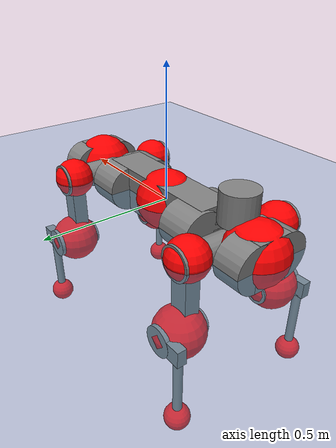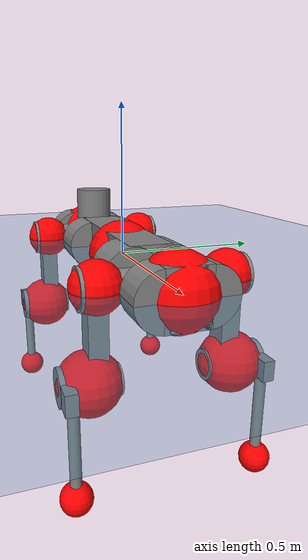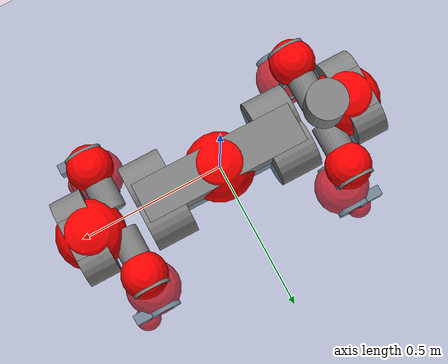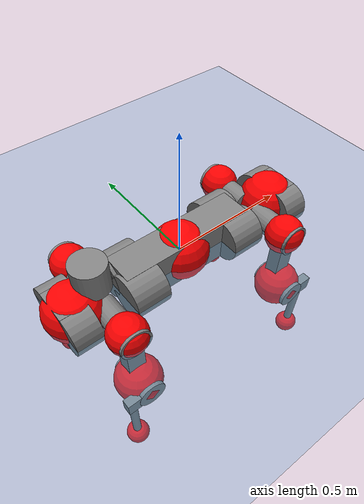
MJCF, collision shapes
<mujoco model="anymal_c">
  <compiler angle="radian" assetdir="assets" balanceinertia="true" inertiafromgeom="false"/>

  <option timestep="0.005" density="1.2" viscosity="2e-05"/>

  <size nkey="1"/>

  <visual>
    <quality shadowsize="8192"/>
    <map shadowclip="0.5"/>
  </visual>

  <default>
    <default class="/">
      <material specular="0" shininess="0.25"/>
      <geom contype="0" conaffinity="0" group="1" solref="-1000 -80"/>
      <site size="0.01 0.005 0.005" group="5"/>
      <general forcelimited="true" forcerange="-80 80" biastype="affine" gainprm="80" biasprm="0 -80 -2"/>
      <default class="anymal_c">
        <joint armature="0.01" damping="0.01" frictionloss="0.1"/>
        <default class="visual">
          <geom type="mesh" group="2"/>
          <default class="visual_zflip"/>
        </default>
        <default class="collision">
          <geom type="cylinder" group="3"/>
          <default class="foot">
            <geom size="0.03 0 0" type="sphere" condim="6" priority="1" friction="0.8 0.02 0.01" solimp="0.015 1 0.03"/>
          </default>
        </default>
      </default>
      <default class="reward_collision_sphere">
        <geom group="5" rgba="1 0 0 1"/>
      </default>
    </default>
  </default>

  <asset>
    <texture type="skybox" colorspace="auto" name="//unnamed_texture_0" builtin="gradient" rgb1="0.95 0.95 0.95" rgb2="0.95 0.95 0.95" width="100" height="600"/>
    <texture type="2d" colorspace="auto" name="texplane" builtin="checker" rgb1="0.345 0.575 0.748" rgb2="0.345 0.575 0.748" markrgb="1 1 1" width="512" height="512"/>
    <texture type="2d" colorspace="linear" name="base" file="base.png"/>
    <texture type="2d" colorspace="linear" name="top_shell" file="top_shell.png"/>
    <texture type="2d" colorspace="linear" name="bottom_shell" file="bottom_shell.png"/>
    <texture type="2d" colorspace="linear" name="remote" file="remote.png"/>
    <texture type="2d" colorspace="linear" name="hatch" file="hatch.png"/>
    <texture type="2d" colorspace="linear" name="handle" file="handle.png"/>
    <texture type="2d" colorspace="linear" name="face" file="face.png"/>
    <texture type="2d" colorspace="linear" name="battery" file="battery.png"/>
    <texture type="2d" colorspace="linear" name="lidar_cage" file="lidar_cage.png"/>
    <texture type="2d" colorspace="linear" name="depth_camera" file="depth_camera.png"/>
    <texture type="2d" colorspace="linear" name="wide_angle_camera" file="wide_angle_camera.png"/>
    <texture type="2d" colorspace="linear" name="lidar" file="lidar.png"/>
    <texture type="2d" colorspace="linear" name="drive" file="drive.png"/>
    <texture type="2d" colorspace="linear" name="hip_l" file="hip_l.png"/>
    <texture type="2d" colorspace="linear" name="shank_l" file="shank_l.png"/>
    <texture type="2d" colorspace="linear" name="foot" file="foot.png"/>
    <texture type="2d" colorspace="linear" name="thigh" file="thigh.png"/>
    <texture type="2d" colorspace="linear" name="shank_r" file="shank_r.png"/>
    <texture type="2d" colorspace="linear" name="hip_r" file="hip_r.png"/>
    <material name="MatPlane" class="/" texture="texplane" texuniform="true" texrepeat="2 2" specular="0.9" shininess="0.5"/>
    <material name="black_plastic" class="/" rgba="0.007 0.007 0.007 1"/>
    <material name="green" class="/" rgba="0.052 0.178 0.033 1"/>
    <material name="red" class="/" rgba="0.178 0.006 0.005 1"/>
    <material name="yellow" class="/" rgba="0.178 0.119 0.006 1"/>
    <material name="lwl" class="/" rgba="0.8 0.8 0.8 1"/>
    <material name="base" class="/" texture="base"/>
    <material name="top_shell" class="/" texture="top_shell"/>
    <material name="bottom_shell" class="/" texture="bottom_shell"/>
    <material name="hip_l" class="/" texture="hip_l"/>
    <material name="thigh" class="/" texture="thigh"/>
    <material name="shank_l" class="/" texture="shank_l"/>
    <material name="foot" class="/" texture="foot"/>
    <material name="hip_r" class="/" texture="hip_r"/>
    <material name="shank" class="/" texture="shank_r"/>
    <material name="hatch" class="/" texture="hatch"/>
    <material name="remote" class="/" texture="remote"/>
    <material name="handle" class="/" texture="handle"/>
    <material name="face" class="/" texture="face"/>
    <material name="depth_camera" class="/" texture="depth_camera"/>
    <material name="wide_angle_camera" class="/" texture="wide_angle_camera"/>
    <material name="battery" class="/" texture="battery"/>
    <material name="lidar_cage" class="/" texture="lidar_cage"/>
    <material name="lidar" class="/" texture="lidar"/>
    <material name="drive" class="/" texture="drive"/>
    <mesh name="base_0" class="/" file="base_0.obj"/>
    <mesh name="base_1" class="/" file="base_1.obj"/>
    <mesh name="base_2" class="/" file="base_2.obj"/>
    <mesh name="base_3" class="/" file="base_3.obj"/>
    <mesh name="base_4" class="/" file="base_4.obj"/>
    <mesh name="base_5" class="/" file="base_5.obj"/>
    <mesh name="top_shell" class="/" file="top_shell.obj"/>
    <mesh name="bottom_shell" class="/" file="bottom_shell.obj"/>
    <mesh name="remote" class="/" file="remote.obj"/>
    <mesh name="handle" class="/" file="handle.obj"/>
    <mesh name="face" class="/" file="face.obj"/>
    <mesh name="wide_angle_camera" class="/" file="wide_angle_camera.obj"/>
    <mesh name="depth_camera" class="/" file="depth_camera.obj"/>
    <mesh name="battery" class="/" file="battery.obj"/>
    <mesh name="lidar_cage" class="/" file="lidar_cage.obj"/>
    <mesh name="lidar" class="/" file="lidar.obj"/>
    <mesh name="drive" class="/" file="drive.obj"/>
    <mesh name="hip_l" class="/" file="hip_l.obj"/>
    <mesh name="thigh" class="/" file="thigh.obj"/>
    <mesh name="shank_l" class="/" file="shank_l.obj"/>
    <mesh name="foot" class="/" file="foot.obj"/>
    <mesh name="hip_r" class="/" file="hip_r.obj"/>
    <mesh name="hatch" class="/" file="hatch.obj"/>
    <mesh name="shank_r" class="/" file="shank_r.obj"/>
  </asset>

  <worldbody>
    <geom name="floor" class="/" size="100 100 0.125" type="plane" group="0" material="MatPlane"/>
    <light name="toplight_shadow" class="/" pos="0 0 5" dir="0.0990148 0.0990148 -0.990148" type="directional" ambient="0.04 0.04 0.04" diffuse="0.55 0.55 0.55" specular="0.12 0.12 0.12"/>
    <light name="toplight_fill" class="/" pos="0 0 5" dir="0.0990148 0.0990148 -0.990148" type="directional" castshadow="false" ambient="0.04 0.04 0.04" diffuse="0.3 0.3 0.3" specular="0.08 0.08 0.08"/>
    <body name="trunk" childclass="anymal_c" pos="0.00115682 -0.000930032 -0.000145002" quat="1 -1.56641e-06 1.314e-06 -3.86115e-05">
      <inertial pos="0.00252289 -0.000634108 0.0482346" quat="0.500005 0.499071 0.497359 0.503544" mass="17.1323" diaginertia="0.785376 0.347138 0.196336"/>
      <joint name="//unnamed_joint_0" type="free" armature="0" damping="0" frictionloss="0"/>
      <geom name="//unnamed_geom_1" class="visual" material="green" mesh="base_0"/>
      <geom name="//unnamed_geom_2" class="visual" material="yellow" mesh="base_1"/>
      <geom name="//unnamed_geom_3" class="visual" material="red" mesh="base_2"/>
      <geom name="//unnamed_geom_4" class="visual" material="black_plastic" mesh="base_3"/>
      <geom name="//unnamed_geom_5" class="visual" material="lwl" mesh="base_4"/>
      <geom name="//unnamed_geom_6" class="visual" material="base" mesh="base_5"/>
      <geom name="trunk_1" class="collision" size="0.281083 0.0678476 0.0872326" type="box"/>
      <geom name="trunk_2" class="collision" size="0.0872326 0.0702707" pos="0.225752 0.0622871 0" quat="0.707107 0 0.707107 0"/>
      <geom name="trunk_3" class="collision" size="0.0872326 0.0702707" pos="-0.225752 0.0622871 0" quat="0.707107 0 0.707107 0"/>
      <geom name="trunk_4" class="collision" size="0.0872326 0.0702707" pos="0.225752 -0.0622871 0" quat="0.707107 0 0.707107 0"/>
      <geom name="trunk_5" class="collision" size="0.0872326 0.0702707" pos="-0.225752 -0.0622871 0" quat="0.707107 0 0.707107 0"/>
      <geom name="//unnamed_geom_12" class="visual" material="top_shell" mesh="top_shell"/>
      <geom name="//unnamed_geom_13" class="visual" material="bottom_shell" mesh="bottom_shell"/>
      <geom name="//unnamed_geom_14" class="visual" material="remote" mesh="remote"/>
      <geom name="//unnamed_geom_15" class="visual" material="handle" mesh="handle"/>
      <geom name="//unnamed_geom_16" class="visual" pos="0.430225 0 0" quat="1 0 0 0" material="face" mesh="face"/>
      <geom name="trunk_6" class="collision" size="0.0533088 0.0678476 0.0872326" pos="0.487312 0 0" type="box"/>
      <geom name="//unnamed_geom_18" class="collision" size="0.0872326 0.0533088" pos="0.487312 0.0622871 0" quat="0.707107 0 0.707107 0"/>
      <geom name="//unnamed_geom_19" class="collision" size="0.0872326 0.0533088" pos="0.487312 -0.0622871 0" quat="0.707107 0 0.707107 0"/>
      <geom name="//unnamed_geom_20" class="visual" pos="0.479162 0 -0.0281757" quat="0.965926 0 0.258819 0" material="depth_camera" mesh="depth_camera"/>
      <geom name="//unnamed_geom_21" class="visual" pos="0.532462 0 0.0146706" material="wide_angle_camera" mesh="wide_angle_camera"/>
      <geom name="//unnamed_geom_22" class="visual_zflip" pos="-0.430225 0 0" quat="0 0 0 1" material="face" mesh="face"/>
      <geom name="trunk_7" class="collision" size="0.0533088 0.0678476 0.0872326" pos="-0.487312 0 0" quat="0 0 0 1" type="box"/>
      <geom name="//unnamed_geom_24" class="collision" size="0.0872326 0.0533088" pos="-0.487312 -0.0622871 0" quat="0 -0.707107 0 0.707107"/>
      <geom name="//unnamed_geom_25" class="collision" size="0.0872326 0.0533088" pos="-0.487312 0.0622871 0" quat="0 -0.707107 0 0.707107"/>
      <geom name="//unnamed_geom_26" class="visual" pos="-0.479162 0 -0.0281757" quat="0 -0.258819 0 0.965926" material="depth_camera" mesh="depth_camera"/>
      <geom name="//unnamed_geom_27" class="visual_zflip" pos="-0.532462 0 0.0146706" quat="0 0 0 1" material="wide_angle_camera" mesh="wide_angle_camera"/>
      <geom name="//unnamed_geom_28" class="visual" material="battery" mesh="battery"/>
      <geom name="//unnamed_geom_29" class="visual" pos="0 0.0660892 0.0289093" quat="0.683013 -0.183013 0.183013 0.683013" material="depth_camera" mesh="depth_camera"/>
      <geom name="//unnamed_geom_30" class="visual" pos="0 -0.0660892 0.0289093" quat="0.683013 0.183013 0.183013 -0.683013" material="depth_camera" mesh="depth_camera"/>
      <geom name="//unnamed_geom_31" class="visual" pos="-0.377809 0 0.07203" quat="1 0 0 0" material="lidar_cage" mesh="lidar_cage"/>
      <geom name="trunk_8" class="collision" size="0.0678476 0.0581551" pos="-0.377809 0 0.13083"/>
      <geom name="//unnamed_geom_33" class="visual" pos="-0.377809 -5.81936e-05 0.139356" quat="0.707107 0 0 -0.707107" material="lidar" mesh="lidar"/>
      <geom name="//unnamed_geom_34" class="visual" pos="0.311278 0.0925728 -1.55571e-09" quat="0.258819 0.965926 0 0" material="drive" mesh="drive"/>
      <geom name="//unnamed_geom_35" class="visual" pos="0.311278 -0.0925728 1.55571e-09" quat="0.258819 -0.965926 0 0" material="drive" mesh="drive"/>
      <geom name="//unnamed_geom_36" class="visual" pos="-0.311278 0.0925728 1.55571e-09" quat="0 0 0.965926 -0.258819" material="drive" mesh="drive"/>
      <geom name="//unnamed_geom_37" class="visual" pos="-0.311278 -0.0925728 -1.55571e-09" quat="0 0 -0.965926 -0.258819" material="drive" mesh="drive"/>
      <geom name="//unnamed_geom_38" class="visual" pos="0.120401 0 0.07154" quat="1 0 0 0" material="hatch" mesh="hatch"/>
      <geom name="//unnamed_geom_39" class="reward_collision_sphere" size="0.11631"/>
      <geom name="//unnamed_geom_40" class="reward_collision_sphere" size="0.11631" pos="0.467072 0 0"/>
      <geom name="//unnamed_geom_41" class="reward_collision_sphere" size="0.11631" pos="-0.467072 0 0"/>
      <site name="imu" pos="0.2566 0.00474273 0.0367079" size="0.00969251"/>
      <camera name="track" pos="0 -1.77963 0" quat="0.707107 0.707107 0 0" mode="trackcom"/>
      <camera name="ego_camera" pos="0.467072 0 -0.0392" quat="-0.5 -0.5 0.5 0.5"/>
      <body name="LF_HIP" pos="0.312311 0.0928711 0.00149166" quat="0.258792 0.965933 -7.69102e-05 0.000391039">
        <inertial pos="0.0573711 -0.0124067 -0.00803564" quat="-0.128994 0.709392 -0.135209 0.679589" mass="2.53736" diaginertia="0.00706392 0.00275453 0.00296563"/>
        <joint name="LF_HAA" pos="0 0 0" axis="0.999916 -0.0127794 -0.00229263" range="-0.724134 0.489391" armature="0.00886666" damping="0.0118001" frictionloss="0.0921651"/>
        <geom name="//unnamed_geom_42" class="visual" pos="0 -9.15153e-05 1.50313e-05" quat="0.258819 -0.965926 0 0" material="hip_l" mesh="hip_l"/>
        <geom name="//unnamed_geom_43" class="visual" pos="0.0621725 -0.073417 -0.0430544" quat="0.183013 -0.683013 0.683013 0.183013" material="drive" mesh="drive"/>
        <geom name="//unnamed_geom_44" class="collision" size="0.0484626 0.0678476" pos="0.0621725 -0.010642 -0.0067669" quat="-0.353553 -0.612372 0.612372 -0.353553"/>
        <body name="LF_THIGH" pos="0.0632875 -0.0650117 -0.0410521" quat="0.183107 -0.683015 0.68311 0.182546">
          <inertial pos="0.0324033 0.000153686 -0.242588" quat="0.992956 -0.00248785 -0.0791659 0.088122" mass="2.81617" diaginertia="0.0366298 0.016825 0.00383382"/>
          <joint name="LF_HFE" pos="0 0 0" axis="0.999989 0.00469876 -0.000417108" range="-3.16146 3.13677" armature="0.0100466" damping="0.0132515" frictionloss="0.100648"/>
          <geom name="//unnamed_geom_45" class="visual" pos="0.00294707 4.64389e-06 0" quat="0.707107 0 0 -0.707107" material="thigh" mesh="thigh"/>
          <geom name="//unnamed_geom_46" class="collision" size="0.0630013 0.03877" pos="0.0415175 0 0" quat="0.5 0.5 -0.5 -0.5"/>
          <geom name="//unnamed_geom_47" class="collision" size="0.0363469 0.0290775 0.136969" pos="0.0311381 0 -0.138488" quat="0.707107 0 0 -0.707107" type="box"/>
          <geom name="//unnamed_geom_48" class="visual" pos="0.104105 0 -0.2793" quat="1 0 0 0" material="drive" mesh="drive"/>
          <geom name="//unnamed_geom_49" class="collision" size="0.0484626 0.0678476" pos="0.0314495 0 -0.2793" quat="0.707107 0 0.707107 0"/>
          <geom name="//unnamed_geom_50" class="reward_collision_sphere" size="0.0775401" pos="0.0259485 0 0"/>
          <body name="LF_SHANK" pos="0.104357 -0.00233878 -0.279385" quat="1 5.21126e-05 -2.60894e-05 5.73334e-05">
            <inertial pos="0.00466492 -0.054547 -0.0790221" quat="0.992639 -0.119617 -0.000147059 -0.0189447" mass="0.527267" diaginertia="0.0121131 0.00512584 0.000993881"/>
            <joint name="LF_KFE" pos="0 0 0" axis="0.999996 -0.000150627 -0.0027599" range="-3.1379 3.12993" armature="0.00979733" damping="0.0064502" frictionloss="0.0987815"/>
            <geom name="//unnamed_geom_51" class="visual" pos="0.000960974 0.00512396 0" quat="0.707107 0 0 -0.707107" material="shank_l" mesh="shank_l"/>
            <geom name="LF_kfe_act" class="collision" size="0.0581551 0.019385" pos="0.0207588 0 0" quat="0.5 0.5 -0.5 -0.5"/>
            <geom name="//unnamed_geom_53" class="collision" size="0.055731 0.0327122 0.0184158" pos="0.0207588 -0.0511635 0" quat="0.5 0.5 -0.5 -0.5" type="box"/>
            <geom name="//unnamed_geom_54" class="visual" pos="0.0135449 -0.076608 -0.331211" quat="0.382683 0 0 -0.92388" material="foot" mesh="foot"/>
            <geom name="LF_calf" class="collision" size="0.0169619 0.136909" pos="0.0135451 -0.0782592 -0.165605" quat="0.707107 0 0 -0.707107"/>
            <geom name="LF_foot" class="foot" size="0.029628" pos="0.0135451 -0.0782592 -0.309161" quat="0.707107 0 0 -0.707107"/>
            <geom name="//unnamed_geom_57" class="reward_collision_sphere" size="0.0969251" pos="-0.0518969 0 0"/>
            <geom name="//unnamed_geom_58" class="reward_collision_sphere" size="0.0484626" pos="0.0135451 -0.0782592 -0.309161"/>
            <site name="LF_foot" class="foot" pos="0.0135451 -0.0782592 -0.309161" quat="0.707107 0 0 -0.707107" size="0.00969251"/>
          </body>
        </body>
      </body>
      <body name="RF_HIP" pos="0.310022 -0.0912892 -7.80951e-07" quat="0.258698 -0.965958 -0.000184461 9.0136e-05">
        <inertial pos="0.0607653 0.0133479 -0.00961518" quat="0.133356 0.680685 0.128945 0.708701" mass="2.60054" diaginertia="0.00720422 0.00281372 0.00303803"/>
        <joint name="RF_HAA" pos="0 0 0" axis="0.999971 -0.00741044 0.00144818" range="-0.523208 0.732821" armature="0.00980115" damping="0.0133022" frictionloss="0.0933533"/>
        <geom name="//unnamed_geom_59" class="visual" pos="0 9.15146e-05 1.50313e-05" quat="0.258819 0.965926 0 0" material="hip_r" mesh="hip_r"/>
        <geom name="//unnamed_geom_60" class="visual" pos="0.0621725 0.073417 -0.0430544" quat="0.183013 0.683013 0.683013 -0.183013" material="drive" mesh="drive"/>
        <geom name="//unnamed_geom_61" class="collision" size="0.0484626 0.0678476" pos="0.0621725 0.010642 -0.0067669" quat="-0.353553 0.612372 0.612372 0.353553"/>
        <body name="RF_THIGH" pos="0.0625325 0.0655086 -0.0420946" quat="0.183027 0.683014 0.683014 -0.182988">
          <inertial pos="0.0330306 0.00201112 -0.240735" quat="0.99284 -0.00490403 -0.0806757 0.0879547" mass="2.77326" diaginertia="0.0361572 0.0166296 0.00375331"/>
          <joint name="RF_HFE" pos="0 0 0" axis="0.999989 -0.000370163 0.00474622" stiffness="0.00426708" range="-3.15319 3.12007" armature="0.00990562" damping="0.00487327" frictionloss="0.0984715"/>
          <geom name="//unnamed_geom_62" class="visual" pos="0.00294707 4.64389e-06 0" quat="0.707107 0 0 -0.707107" material="thigh" mesh="thigh"/>
          <geom name="//unnamed_geom_63" class="collision" size="0.0630013 0.03877" pos="0.0415175 0 0" quat="0.5 0.5 0.5 0.5"/>
          <geom name="//unnamed_geom_64" class="collision" size="0.0363469 0.0290775 0.136969" pos="0.0311381 0 -0.138488" quat="0.707107 0 0 0.707107" type="box"/>
          <geom name="//unnamed_geom_65" class="visual" pos="0.104105 0 -0.2793" quat="1 0 0 0" material="drive" mesh="drive"/>
          <geom name="//unnamed_geom_66" class="collision" size="0.0484626 0.0678476" pos="0.0314495 0 -0.2793" quat="0.707107 0 0.707107 0"/>
          <geom name="//unnamed_geom_67" class="reward_collision_sphere" size="0.0775401" pos="0.0259485 0 0"/>
          <body name="RF_SHANK" pos="0.103472 -0.000555063 -0.278302" quat="1 0.000247201 0.000612101 -0.000698876">
            <inertial pos="0.00804181 0.0549531 -0.0780363" quat="0.993126 0.114098 -0.00119848 0.02609" mass="0.527339" diaginertia="0.012023 0.00517823 0.00102853"/>
            <joint name="RF_KFE" pos="0 0 0" axis="0.999998 -0.0017289 -0.000856824" range="-3.16363 3.13472" armature="0.00996455" damping="0.0147969" frictionloss="0.102042"/>
            <geom name="//unnamed_geom_68" class="visual" pos="0.000960969 -0.00512395 0" quat="0.707107 0 0 0.707107" material="shank" mesh="shank_r"/>
            <geom name="RF_kfe_act" class="collision" size="0.0581551 0.019385" pos="0.0207588 0 0" quat="0.5 0.5 0.5 0.5"/>
            <geom name="//unnamed_geom_70" class="collision" size="0.055731 0.0327122 0.0184158" pos="0.0207588 0.0511635 0" quat="0.5 0.5 0.5 0.5" type="box"/>
            <geom name="//unnamed_geom_71" class="visual" pos="0.0135453 0.076608 -0.331211" quat="0.382683 0 0 0.92388" material="foot" mesh="foot"/>
            <geom name="RF_calf" class="collision" size="0.0169619 0.136909" pos="0.0135451 0.0782592 -0.165605" quat="0.707107 0 0 0.707107"/>
            <geom name="RF_foot" class="foot" size="0.0289233" pos="0.0135451 0.0782592 -0.309161" quat="0.707107 0 0 0.707107"/>
            <geom name="//unnamed_geom_74" class="reward_collision_sphere" size="0.0969251" pos="-0.0518969 0 0"/>
            <geom name="//unnamed_geom_75" class="reward_collision_sphere" size="0.0484626" pos="0.0135451 0.0782592 -0.309161"/>
            <site name="RF_foot" class="foot" pos="0.0135451 0.0782592 -0.309161" quat="0.707107 0 0 0.707107" size="0.00969251"/>
          </body>
        </body>
      </body>
      <body name="LH_HIP" pos="-0.308481 0.0920908 0.000609309" quat="7.94211e-05 -0.000114538 0.965922 -0.258832">
        <inertial pos="0.0605735 0.0112795 -0.00797317" quat="0.134263 0.678155 0.123671 0.711888" mass="2.55567" diaginertia="0.00706206 0.00273159 0.00293353"/>
        <joint name="LH_HAA" pos="0 0 0" axis="0.999994 0.00298389 0.00181989" range="-0.499428 0.703245" armature="0.00966067" damping="0.00986387" frictionloss="0.10069"/>
        <geom name="//unnamed_geom_76" class="visual" pos="0 9.15146e-05 1.50313e-05" quat="-0.258819 -0.965926 0 0" material="hip_r" mesh="hip_r"/>
        <geom name="//unnamed_geom_77" class="visual" pos="0.0621725 0.073417 -0.0430544" quat="0.183013 0.683013 0.683013 -0.183013" material="drive" mesh="drive"/>
        <geom name="//unnamed_geom_78" class="collision" size="0.0484626 0.0678476" pos="0.0621725 0.010642 -0.0067669" quat="-0.353553 0.612372 0.612372 0.353553"/>
        <body name="LH_THIGH" pos="0.0607401 0.0638679 -0.0419444" quat="0.183318 0.683051 0.682864 -0.183119">
          <inertial pos="0.0322375 0.00158504 -0.240519" quat="0.992931 -0.00534031 -0.0792839 0.0881716" mass="2.80022" diaginertia="0.0365492 0.0166666 0.00368653"/>
          <joint name="LH_HFE" pos="0 0 0" axis="0.99999 -0.00376815 0.00231772" range="-3.14652 3.12966" armature="0.0104086" damping="0.00508186" frictionloss="0.100726"/>
          <geom name="//unnamed_geom_79" class="visual" pos="0.00294707 4.64389e-06 0" quat="0.707107 0 0 -0.707107" material="thigh" mesh="thigh"/>
          <geom name="//unnamed_geom_80" class="collision" size="0.0630013 0.03877" pos="0.0415175 0 0" quat="0.5 0.5 -0.5 -0.5"/>
          <geom name="//unnamed_geom_81" class="collision" size="0.0363469 0.0290775 0.136969" pos="0.0311381 0 -0.138488" quat="0.707107 0 0 -0.707107" type="box"/>
          <geom name="//unnamed_geom_82" class="visual" pos="0.104105 0 -0.2793" quat="1 0 0 0" material="drive" mesh="drive"/>
          <geom name="//unnamed_geom_83" class="collision" size="0.0484626 0.0678476" pos="0.0314495 0 -0.2793" quat="0.707107 0 0.707107 0"/>
          <geom name="//unnamed_geom_84" class="reward_collision_sphere" size="0.0775401" pos="0.0259485 0 0"/>
          <body name="LH_SHANK" pos="0.10493 -0.000163136 -0.281677" quat="0.999999 1.89965e-06 0.000201646 0.00111749">
            <inertial pos="0.00612402 0.054457 -0.0768559" quat="0.99242 0.120034 -0.00156363 0.0263061" mass="0.52814" diaginertia="0.012323 0.00523046 0.00100998"/>
            <joint name="LH_KFE" pos="0 0 0" axis="0.999975 0.0063007 -0.00333196" range="-3.14062 3.14971" armature="0.0097028" damping="0.0084028" frictionloss="0.095184"/>
            <geom name="//unnamed_geom_85" class="visual" pos="0.000960969 -0.00512395 0" quat="-0.707107 0 0 -0.707107" material="shank" mesh="shank_r"/>
            <geom name="LH_kfe_act" class="collision" size="0.0581551 0.019385" pos="0.0207588 0 0" quat="0.5 0.5 -0.5 -0.5"/>
            <geom name="//unnamed_geom_87" class="collision" size="0.055731 0.0327122 0.0184158" pos="0.0207588 0.0511635 0" quat="0.5 0.5 -0.5 -0.5" type="box"/>
            <geom name="//unnamed_geom_88" class="visual" pos="0.0135453 0.076608 -0.331211" quat="-0.382683 0 0 -0.92388" material="foot" mesh="foot"/>
            <geom name="LH_calf" class="collision" size="0.0169619 0.136909" pos="0.0135451 0.0782592 -0.165605" quat="0.707107 0 0 -0.707107"/>
            <geom name="LH_foot" class="foot" size="0.0299863" pos="0.0135451 0.0782592 -0.309161" quat="0.707107 0 0 -0.707107"/>
            <geom name="//unnamed_geom_91" class="reward_collision_sphere" size="0.0969251" pos="-0.0518969 0 0"/>
            <geom name="//unnamed_geom_92" class="reward_collision_sphere" size="0.0484626" pos="0.0135451 0.0782592 -0.309161"/>
            <site name="LH_foot" class="foot" pos="0.0135451 0.0782592 -0.309161" quat="0.707107 0 0 -0.707107" size="0.00969251"/>
          </body>
        </body>
      </body>
      <body name="RH_HIP" pos="-0.312899 -0.0933829 -1.03232e-05" quat="-0.000222918 0.000367148 -0.966004 -0.258526">
        <inertial pos="0.0588518 -0.0146127 -0.00826992" quat="-0.124093 0.708939 -0.14262 0.67946" mass="2.5215" diaginertia="0.00695697 0.00271727 0.00294042"/>
        <joint name="RH_HAA" pos="0 0 0" axis="0.999945 0.00828577 0.00641471" stiffness="0.000204314" range="-0.726146 0.476638" armature="0.00996896" damping="0.00561344" frictionloss="0.0955621"/>
        <geom name="//unnamed_geom_93" class="visual" pos="0 -9.15153e-05 1.50313e-05" quat="-0.258819 0.965926 0 0" material="hip_l" mesh="hip_l"/>
        <geom name="//unnamed_geom_94" class="visual" pos="0.0621725 -0.073417 -0.0430544" quat="-0.183013 0.683013 -0.683013 -0.183013" material="drive" mesh="drive"/>
        <geom name="//unnamed_geom_95" class="collision" size="0.0484626 0.0678476" pos="0.0621725 -0.010642 -0.0067669" quat="0.353553 0.612372 -0.612372 0.353553"/>
        <body name="RH_THIGH" pos="0.0625588 -0.0638489 -0.0400936" quat="-0.183005 0.68277 -0.683265 -0.182986">
          <inertial pos="0.0318281 -0.000359689 -0.241245" quat="0.992276 0.00112949 -0.0876329 0.0877894" mass="2.79918" diaginertia="0.036541 0.0168136 0.00387851"/>
          <joint name="RH_HFE" pos="0 0 0" axis="0.999996 -0.0021892 0.00159958" range="-3.14344 3.12497" armature="0.0100209" damping="0.000822503" frictionloss="0.101615"/>
          <geom name="//unnamed_geom_96" class="visual" pos="0.00294707 4.64389e-06 0" quat="0.707107 0 0 -0.707107" material="thigh" mesh="thigh"/>
          <geom name="//unnamed_geom_97" class="collision" size="0.0630013 0.03877" pos="0.0415175 0 0" quat="0.5 0.5 0.5 0.5"/>
          <geom name="//unnamed_geom_98" class="collision" size="0.0363469 0.0290775 0.136969" pos="0.0311381 0 -0.138488" quat="0.707107 0 0 0.707107" type="box"/>
          <geom name="//unnamed_geom_99" class="visual" pos="0.104105 0 -0.2793" quat="1 0 0 0" material="drive" mesh="drive"/>
          <geom name="//unnamed_geom_100" class="collision" size="0.0484626 0.0678476" pos="0.0314495 0 -0.2793" quat="0.707107 0 0.707107 0"/>
          <geom name="//unnamed_geom_101" class="reward_collision_sphere" size="0.0775401" pos="0.0259485 0 0"/>
          <body name="RH_SHANK" pos="0.103891 0.00017352 -0.279517" quat="1 6.11997e-06 -1.61665e-05 1.42082e-05">
            <inertial pos="0.00469933 -0.0562105 -0.0775479" quat="0.992933 -0.115908 -0.00108555 -0.0254515" mass="0.538274" diaginertia="0.0122299 0.00518653 0.00100546"/>
            <joint name="RH_KFE" pos="0 0 0" axis="0.999984 -0.00514807 -0.00216215" stiffness="0.0020618" range="-3.11906 3.1662" armature="0.00969215" damping="0.00830987" frictionloss="0.105022"/>
            <geom name="//unnamed_geom_102" class="visual" pos="0.000960974 0.00512396 0" quat="0.707107 0 0 -0.707107" material="shank_l" mesh="shank_l"/>
            <geom name="RH_kfe_act" class="collision" size="0.0581551 0.019385" pos="0.0207588 0 0" quat="0.5 0.5 0.5 0.5"/>
            <geom name="//unnamed_geom_104" class="collision" size="0.055731 0.0327122 0.0184158" pos="0.0207588 -0.0511635 0" quat="0.5 0.5 0.5 0.5" type="box"/>
            <geom name="//unnamed_geom_105" class="visual" pos="0.0135449 -0.076608 -0.331211" quat="0.382683 0 0 -0.92388" material="foot" mesh="foot"/>
            <geom name="RH_calf" class="collision" size="0.0169619 0.136909" pos="0.0135451 -0.0782592 -0.165605" quat="0.707107 0 0 0.707107"/>
            <geom name="RH_foot" class="foot" size="0.0280103" pos="0.0135451 -0.0782592 -0.309161" quat="0.707107 0 0 0.707107"/>
            <geom name="//unnamed_geom_108" class="reward_collision_sphere" size="0.0969251" pos="-0.0518969 0 0"/>
            <geom name="//unnamed_geom_109" class="reward_collision_sphere" size="0.0484626" pos="0.0135451 -0.0782592 -0.309161"/>
            <site name="RH_foot" class="foot" pos="0.0135451 -0.0782592 -0.309161" quat="0.707107 0 0 0.707107" size="0.00969251"/>
          </body>
        </body>
      </body>
    </body>
  </worldbody>

  <contact>
    <pair class="/" geom1="floor" geom2="LF_foot" name="//unnamed_contact_0"/>
    <pair class="/" geom1="floor" geom2="RF_foot" name="//unnamed_contact_1"/>
    <pair class="/" geom1="floor" geom2="LH_foot" name="//unnamed_contact_2"/>
    <pair class="/" geom1="floor" geom2="RH_foot" name="//unnamed_contact_3"/>
  </contact>

  <actuator>
    <general name="LF_HAA" class="/" joint="LF_HAA" forcerange="-78.0234 78.0234" gainprm="78.3057" biasprm="0 -78.3057 -1.87516"/>
    <general name="LF_HFE" class="/" joint="LF_HFE" forcerange="-75.6101 75.6101" gainprm="78.3057" biasprm="0 -78.3057 -1.87516"/>
    <general name="LF_KFE" class="/" joint="LF_KFE" forcerange="-74.8122 74.8122" gainprm="78.3057" biasprm="0 -78.3057 -1.87516"/>
    <general name="RF_HAA" class="/" joint="RF_HAA" forcerange="-78.8225 78.8225" gainprm="78.3057" biasprm="0 -78.3057 -1.87516"/>
    <general name="RF_HFE" class="/" joint="RF_HFE" forcerange="-80.1303 80.1303" gainprm="78.3057" biasprm="0 -78.3057 -1.87516"/>
    <general name="RF_KFE" class="/" joint="RF_KFE" forcerange="-75.9858 75.9858" gainprm="78.3057" biasprm="0 -78.3057 -1.87516"/>
    <general name="LH_HAA" class="/" joint="LH_HAA" forcerange="-77.4977 77.4977" gainprm="78.3057" biasprm="0 -78.3057 -1.87516"/>
    <general name="LH_HFE" class="/" joint="LH_HFE" forcerange="-76.7142 76.7142" gainprm="78.3057" biasprm="0 -78.3057 -1.87516"/>
    <general name="LH_KFE" class="/" joint="LH_KFE" forcerange="-81.0131 81.0131" gainprm="78.3057" biasprm="0 -78.3057 -1.87516"/>
    <general name="RH_HAA" class="/" joint="RH_HAA" forcerange="-78.6251 78.6251" gainprm="78.3057" biasprm="0 -78.3057 -1.87516"/>
    <general name="RH_HFE" class="/" joint="RH_HFE" forcerange="-75.3906 75.3906" gainprm="78.3057" biasprm="0 -78.3057 -1.87516"/>
    <general name="RH_KFE" class="/" joint="RH_KFE" forcerange="-72.0619 72.0619" gainprm="78.3057" biasprm="0 -78.3057 -1.87516"/>
  </actuator>

  <sensor>
    <gyro site="imu" name="imu_angular_velocity"/>
    <velocimeter site="imu" name="imu_linear_velocity"/>
    <framelinvel objtype="site" objname="LF_foot" name="LF_foot_global_linear_velocity"/>
    <framelinvel objtype="site" objname="RF_foot" name="RF_foot_global_linear_velocity"/>
    <framelinvel objtype="site" objname="LH_foot" name="LH_foot_global_linear_velocity"/>
    <framelinvel objtype="site" objname="RH_foot" name="RH_foot_global_linear_velocity"/>
  </sensor>

  <keyframe>
    <key name="home" qpos="0 0 0.55 1 0 0 0 0 0.4 -0.8 0 -0.4 0.8 0 -0.4 0.8 0 0.4 -0.8"/>
  </keyframe>
</mujoco>
